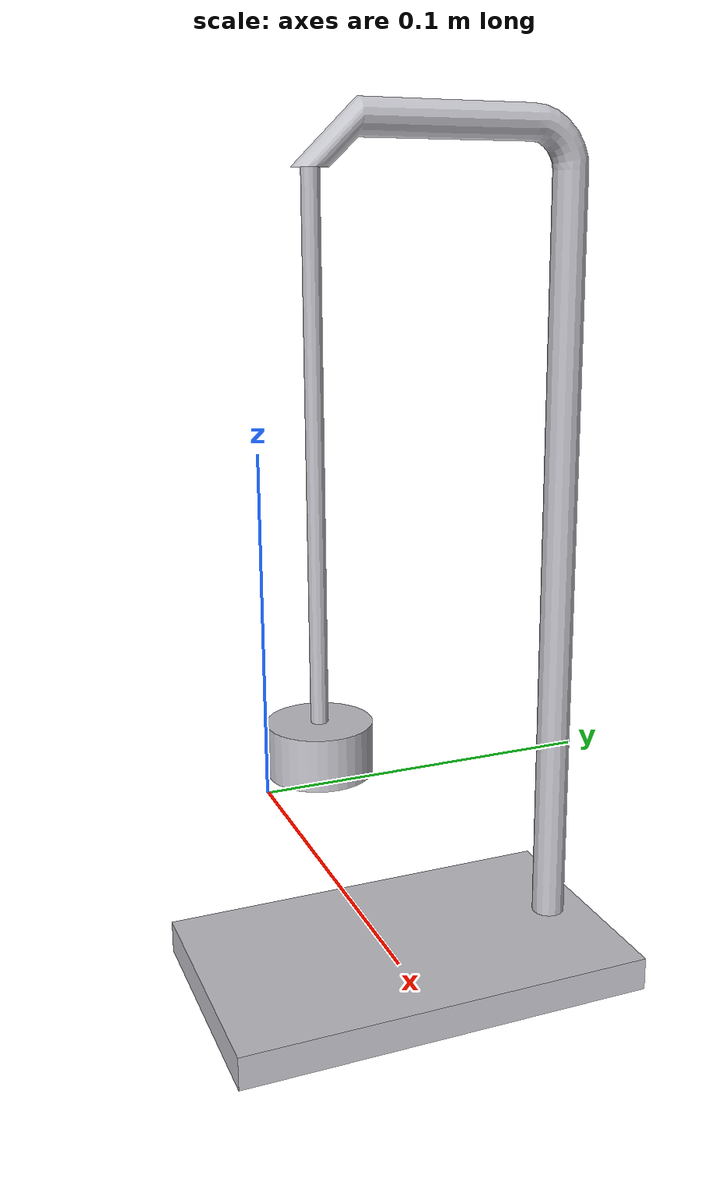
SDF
<?xml version='1.0'?>
<sdf version='1.7'>
  <model name='simple_pedulum_fixed'>
    <link name='base_link'>
      <inertial>
        <pose>0.0125 0.045847 -0.024184 0 -0 0</pose>
        <mass>0.925452</mass>
        <inertia>
          <ixx>0.00585</ixx>
          <ixy>0</ixy>
          <ixz>0</ixz>
          <iyy>0.004914</iyy>
          <iyz>-0.000767</iyz>
          <izz>0.001627</izz>
        </inertia>
      </inertial>
      <self_collide>1</self_collide>
      <gravity>1</gravity>
      <enable_wind>0</enable_wind>
      <kinematic>0</kinematic>
      <pose>0 0 0 0 -0 0</pose>
      <visual name='base_link_visual'>
        <pose>0 0 0 0 -0 0</pose>
        <geometry>
          <mesh>
            <scale>0.001 0.001 0.001</scale>
            <uri>/home/marelo/IC_catkin_ws/src/gazebo_ic_pkgs/simple_pendulum/simple_pedulum_description/meshes/base_link.stl</uri>
          </mesh>
        </geometry>
        <material>
          <script>
            <name>Gazebo/Silver</name>
            <uri>file://media/materials/scripts/gazebo.material</uri>
          </script>
          <shader type='pixel'/>
        </material>
        <transparency>0</transparency>
        <cast_shadows>1</cast_shadows>
      </visual>
      <collision name='base_link_collision'>
        <laser_retro>0</laser_retro>
        <max_contacts>10</max_contacts>
        <pose>0 0 0 0 -0 0</pose>
        <geometry>
          <mesh>
            <uri>/home/marelo/IC_catkin_ws/src/gazebo_ic_pkgs/simple_pendulum/simple_pedulum_description/meshes/base_link.stl</uri>
            <scale>0.001 0.001 0.001</scale>
          </mesh>
        </geometry>
        <surface>
          <friction>
            <ode>
              <mu>0.2</mu>
              <mu2>0.2</mu2>
              <fdir1>0 0 0</fdir1>
              <slip1>0</slip1>
              <slip2>0</slip2>
            </ode>
            <torsional>
              <coefficient>1</coefficient>
              <patch_radius>0</patch_radius>
              <surface_radius>0</surface_radius>
              <use_patch_radius>1</use_patch_radius>
              <ode>
                <slip>0</slip>
              </ode>
            </torsional>
          </friction>
          <bounce>
            <restitution_coefficient>0</restitution_coefficient>
            <threshold>1e+06</threshold>
          </bounce>
          <contact>
            <collide_without_contact>0</collide_without_contact>
            <collide_without_contact_bitmask>1</collide_without_contact_bitmask>
            <collide_bitmask>1</collide_bitmask>
            <ode>
              <soft_cfm>0</soft_cfm>
              <soft_erp>0.2</soft_erp>
              <kp>1e+13</kp>
              <kd>1</kd>
              <max_vel>0.01</max_vel>
              <min_depth>0</min_depth>
            </ode>
            <bullet>
              <split_impulse>1</split_impulse>
              <split_impulse_penetration_threshold>-0.01</split_impulse_penetration_threshold>
              <soft_cfm>0</soft_cfm>
              <soft_erp>0.2</soft_erp>
              <kp>1e+13</kp>
              <kd>1</kd>
            </bullet>
          </contact>
        </surface>
      </collision>
    </link>
    <link name='pendulum_1'>
      <pose>0.0125 0.012 0.175 0 -0 0</pose>
      <inertial>
        <pose>0 0 -0.139565 0 -0 0</pose>
        <mass>0.106353</mass>
        <inertia>
          <ixx>0.000173</ixx>
          <ixy>0</ixy>
          <ixz>0</ixz>
          <iyy>0.000173</iyy>
          <iyz>0</iyz>
          <izz>9e-06</izz>
        </inertia>
      </inertial>
      <self_collide>1</self_collide>
      <enable_wind>0</enable_wind>
      <kinematic>0</kinematic>
      <visual name='pendulum_1_visual'>
        <pose>-0.0125 -0.012 -0.175 0 -0 0</pose>
        <geometry>
          <mesh>
            <scale>0.001 0.001 0.001</scale>
            <uri>/home/marelo/IC_catkin_ws/src/gazebo_ic_pkgs/simple_pendulum/simple_pedulum_description/meshes/pendulum_1.stl</uri>
          </mesh>
        </geometry>
        <material>
          <script>
            <name>Gazebo/Silver</name>
            <uri>file://media/materials/scripts/gazebo.material</uri>
          </script>
          <shader type='pixel'/>
        </material>
        <transparency>0</transparency>
        <cast_shadows>1</cast_shadows>
      </visual>
      <collision name='pendulum_1_collision'>
        <laser_retro>0</laser_retro>
        <max_contacts>10</max_contacts>
        <pose>-0.0125 -0.012 -0.175 0 -0 0</pose>
        <geometry>
          <mesh>
            <uri>/home/marelo/IC_catkin_ws/src/gazebo_ic_pkgs/simple_pendulum/simple_pedulum_description/meshes/pendulum_1.stl</uri>
            <scale>0.001 0.001 0.001</scale>
          </mesh>
        </geometry>
        <surface>
          <friction>
            <ode>
              <mu>0.2</mu>
              <mu2>0.2</mu2>
              <fdir1>0 0 0</fdir1>
              <slip1>0</slip1>
              <slip2>0</slip2>
            </ode>
            <torsional>
              <coefficient>1</coefficient>
              <patch_radius>0</patch_radius>
              <surface_radius>0</surface_radius>
              <use_patch_radius>1</use_patch_radius>
              <ode>
                <slip>0</slip>
              </ode>
            </torsional>
          </friction>
          <bounce>
            <restitution_coefficient>0</restitution_coefficient>
            <threshold>1e+06</threshold>
          </bounce>
          <contact>
            <collide_without_contact>0</collide_without_contact>
            <collide_without_contact_bitmask>1</collide_without_contact_bitmask>
            <collide_bitmask>1</collide_bitmask>
            <ode>
              <soft_cfm>0</soft_cfm>
              <soft_erp>0.2</soft_erp>
              <kp>1e+13</kp>
              <kd>1</kd>
              <max_vel>0.01</max_vel>
              <min_depth>0</min_depth>
            </ode>
            <bullet>
              <split_impulse>1</split_impulse>
              <split_impulse_penetration_threshold>-0.01</split_impulse_penetration_threshold>
              <soft_cfm>0</soft_cfm>
              <soft_erp>0.2</soft_erp>
              <kp>1e+13</kp>
              <kd>1</kd>
            </bullet>
          </contact>
        </surface>
      </collision>
    </link>
    <joint name='Ball2' type='ball'>
      <parent>base_link</parent>
      <child>pendulum_1</child>
      <pose>0 0 0 0 -0 0</pose>
      <physics>
        <ode>
          <limit>
            <cfm>0</cfm>
            <erp>0.2</erp>
          </limit>
          <suspension>
            <cfm>0</cfm>
            <erp>0.2</erp>
          </suspension>
        </ode>
      </physics>
    </joint>
    <static>0</static>
    <allow_auto_disable>1</allow_auto_disable>
    <plugin name='control' filename='libgazebo_ros_control.so'>
      <robotNamespace>/</robotNamespace>
    </plugin>
  </model>
</sdf>
